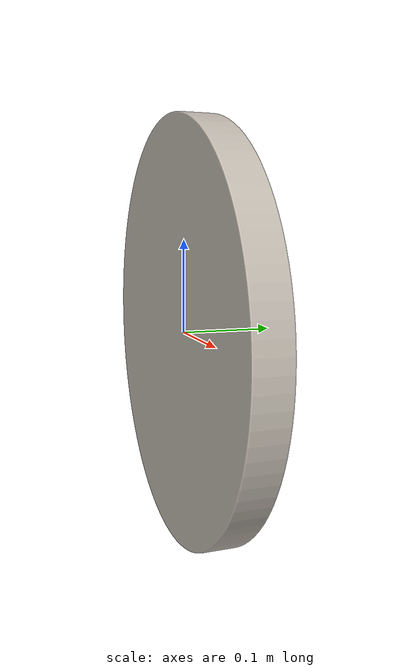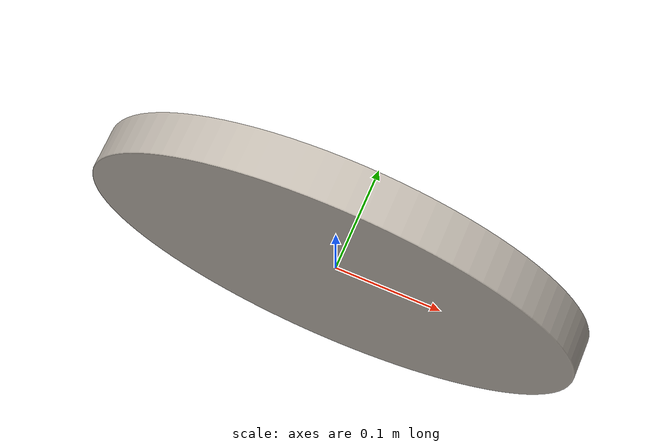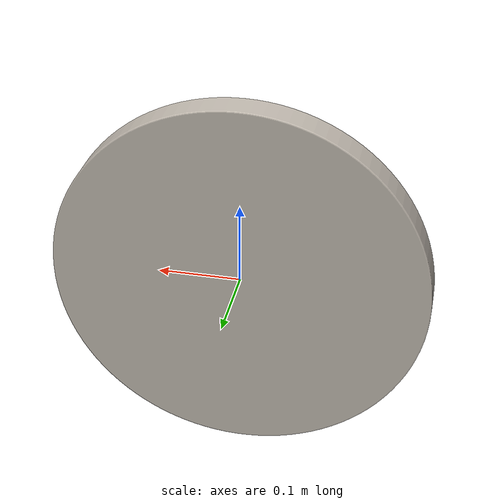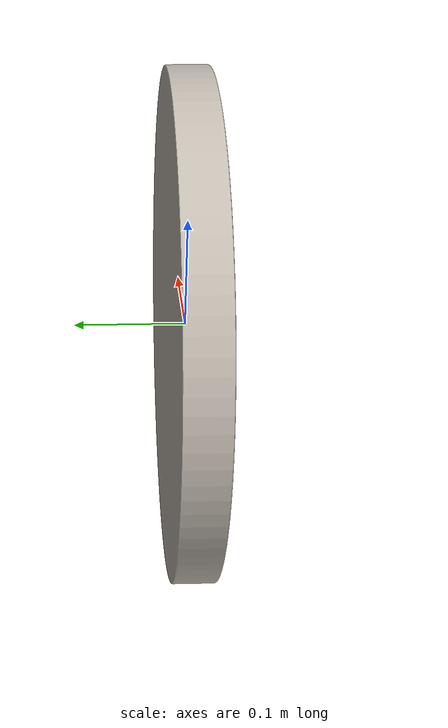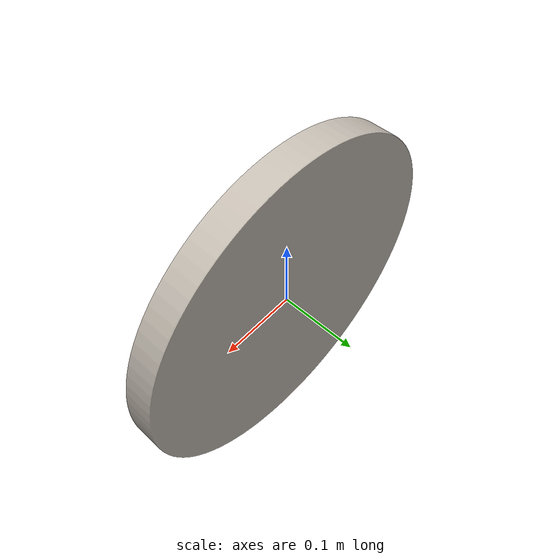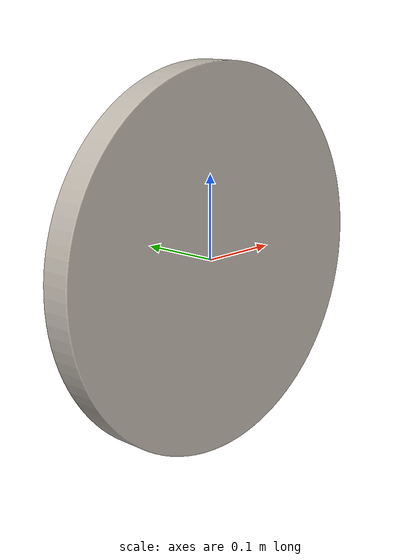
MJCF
<?xml version="1.0" ?>
<mujoco model="target">
	<compiler meshdir="target/meshes" texturedir="target/textures" angle="radian" autolimits="true" balanceinertia="true" boundmass="0.000001" boundinertia="0.000001"/>
	<default>
		<default class="visual">
			<geom contype="0" conaffinity="0"/>
		</default>
		<default class="collision">
			<geom rgba="1.0 0.0 0.0 0.0"/>
		</default>
	</default>
	<asset>
		<mesh name="Target" file="obj/Target.obj" scale="1.0 1.0 1.0"/>
		<mesh name="Target_001" file="stl/Target_001.stl" scale="1.0 1.0 1.0"/>
		<material name="M_Target" texture="T_Target"/>
		<texture name="T_Target" type="2d" file="T_Target.png"/>
	</asset>
	<worldbody>
		<body name="target" pos="0.0 0.0 0.0" quat="1.0 0.0 0.0 0.0">
			<inertial mass="0.5470947027206421" pos="-3.6250018098371584e-08 -6.144251756268204e-07 -3.0068552092643586e-08" quat="0.6526776552200317 -0.6526776552200317 -0.27205124497413635 -0.27205124497413635" diaginertia="0.007171271834522486 0.007171276956796646 0.01421618927270174"/>
			<geom name="Target" type="mesh" pos="0.0 0.0 0.0" quat="1.0 0.0 0.0 0.0" mesh="Target" material="M_Target" class="visual"/>
			<geom name="Target_001" type="mesh" pos="0.0 0.0 0.0" quat="1.0 0.0 0.0 0.0" mesh="Target_001" class="collision"/>
		</body>
	</worldbody>
	<equality/>
</mujoco>
